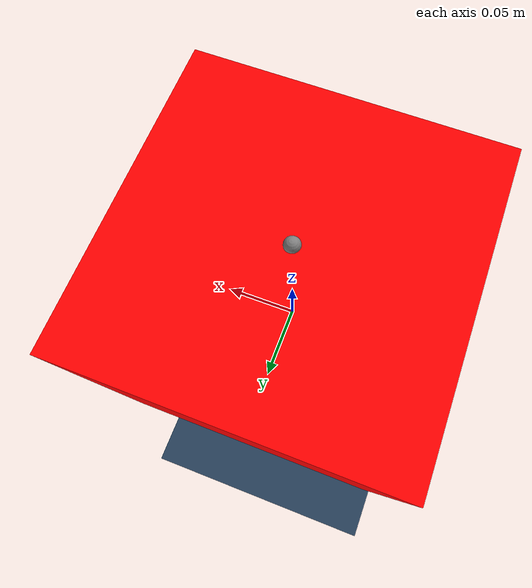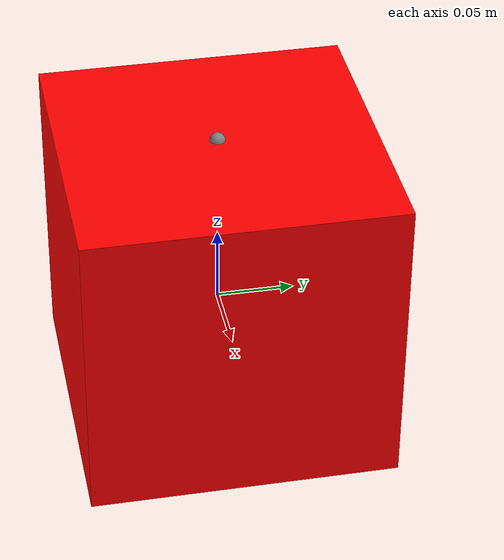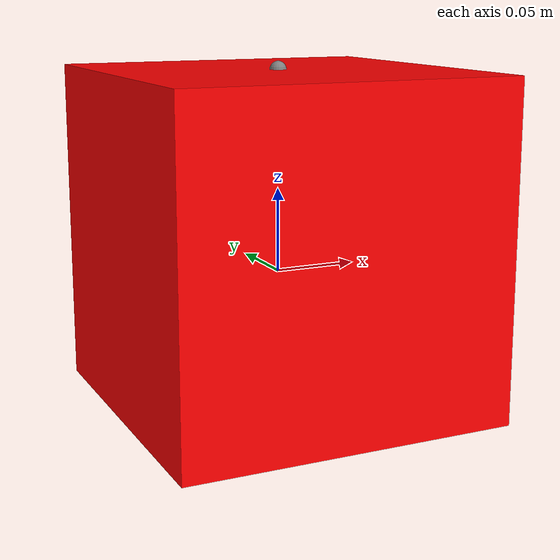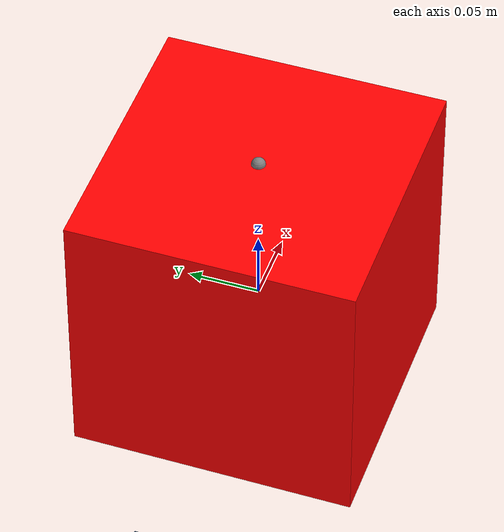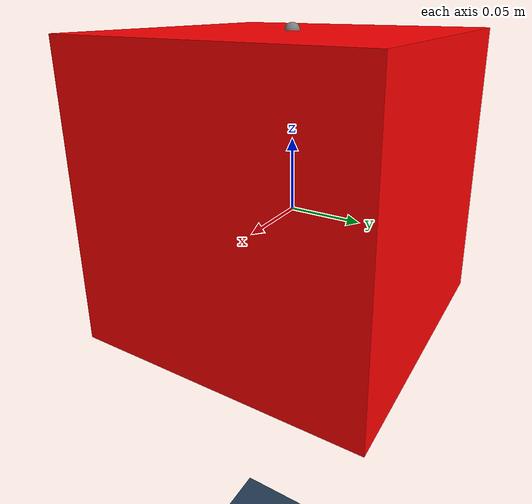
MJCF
<mujoco model="cartpole3D">
    <!--
        Degree of Freedoms: 2
        Actuators: 1

        cartpole simulation in configurable 3D ground plane
    -->

    <option gravity="0 0 -9.81" integrator="RK4" timestep="0.002"/>
    <compiler inertiafromgeom="true"/>

    <!-- ground grid plane asset & skybox-->
    <asset>
        <texture type="skybox" builtin="gradient" rgb1="0.3 0.5 0.7" rgb2="0 0 0" width="512" height="512"/>
        <texture name="grid" type="2d" builtin="checker" rgb1="0.1 0.2 0.3"
         rgb2="0.2 0.3 0.4" width="500" height="500"/>
         <material name="grid" texture="grid" texrepeat="8 8" reflectance="0.3"/>
    </asset>

    <!-- default settings and configurations for the sim-->
    <default>

    </default>

    <!-- define world scene of simulation -->
    <worldbody>
        <!-- define lights, ground (change zaxis to change ground slope), and fixed camera-->
        <light name="light0" pos="1 0 0"/>
        <light name="light1" pos="0 1 0"/>
        <light name="light2" pos="0 0 1"/>
        <geom name="ground" type="plane" pos="0 0 -0.5" size="3 3 0.1" material="grid"
         zaxis="0.0 0.0 0.6" friction="0.0"/>
        <camera name="fixed" pos="0 -1.3 0.5" xyaxes="1 0 0 0 1 2"/>

        <!-- cart body -->
        <body name="cart_body" pos="0 0 0.02">
            <joint name="free" type="free"/>
            <geom name="cart_geom" type="box" size="0.1 0.1 0.1" rgba="1 0 0 1"/>
            <site name="pendulum_connection" pos="0 0 0.1"/>
            <site name="IMU"/>
        </body>

    </worldbody>

</mujoco>
